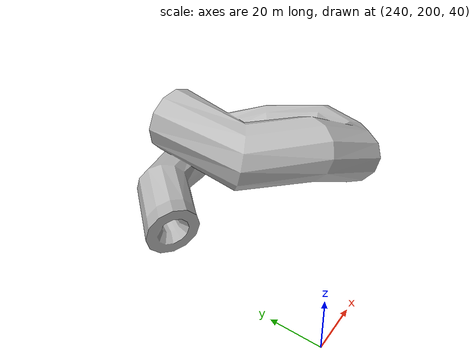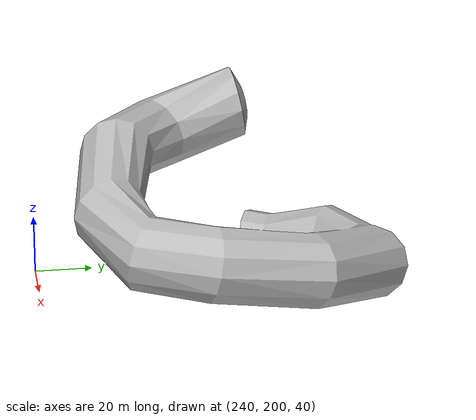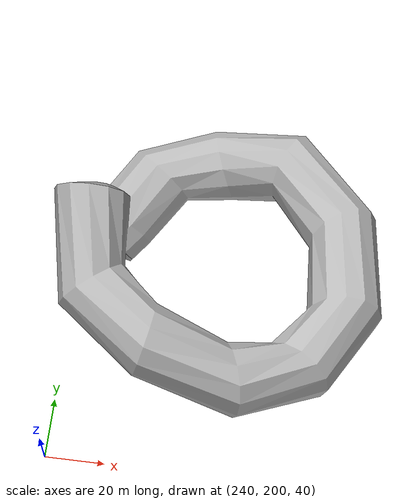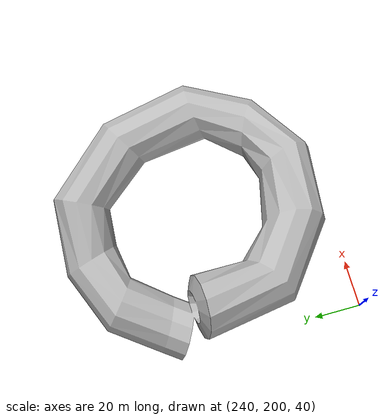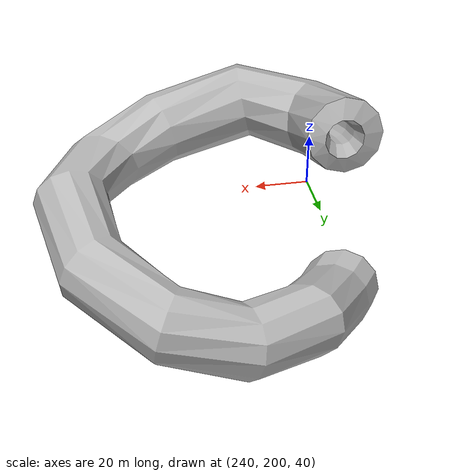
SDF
<?xml version="1.0" ?>
<sdf version="1.6">
	<model name='maze'>
		<pose>0 0 0 0 0 0</pose>
		<link name='maze_link'>

			<collision name="collision_maze">
				<geometry>
					<mesh>
					<uri>model://luo-xuan/tt.dae</uri>
					</mesh>
				</geometry>
				<surface>
					<bounce>
						<restitution_coefficient>0.5</restitution_coefficient>
					</bounce>
				</surface>
			</collision>
			<visual name='maze_visual'>
				<cast_shadows>false</cast_shadows>
				<geometry>
					<mesh>
					<uri>model://luo-xuan/tt.dae</uri>
					</mesh>
				</geometry>
				<material>
				<lighting>1</lighting>
          			<script>
						<uri>file://media/beijing.material</uri>
              			<name>Gazebo/luoxuan</name>
          			</script>
        		</material>
			</visual>
		</link>
	</model>
</sdf>
